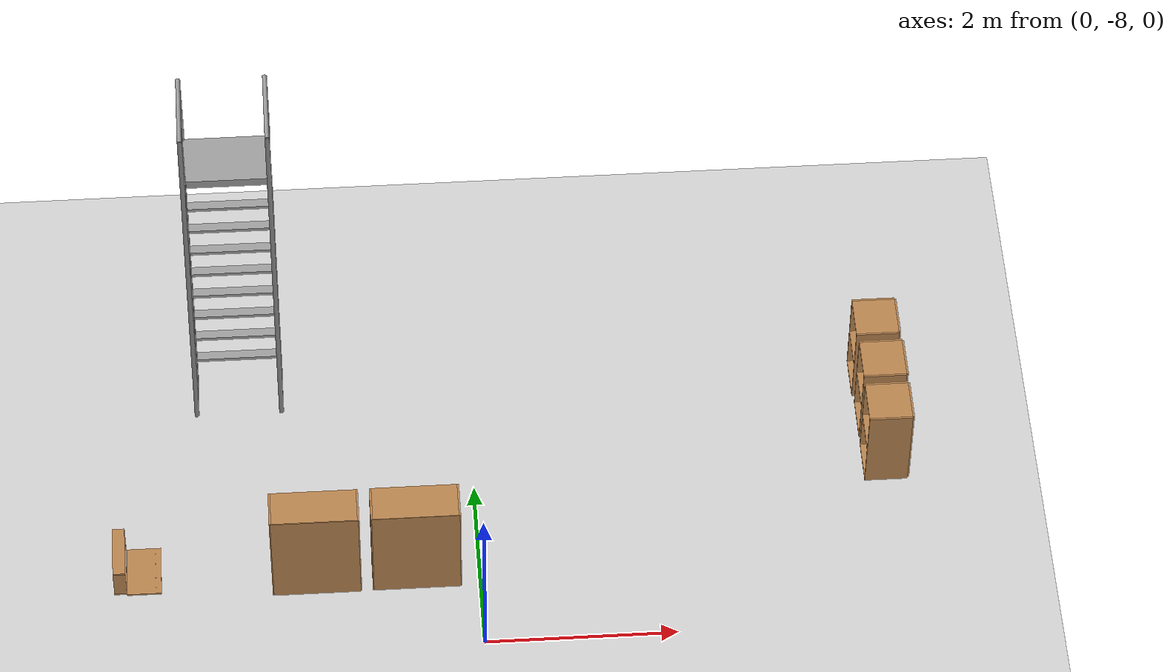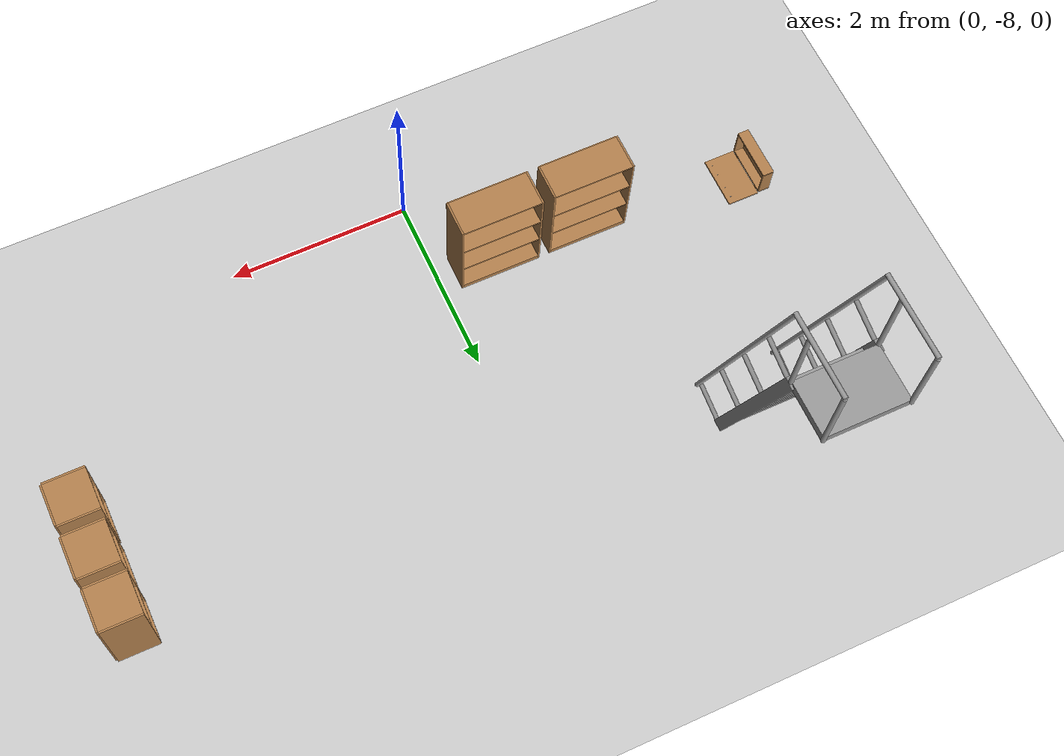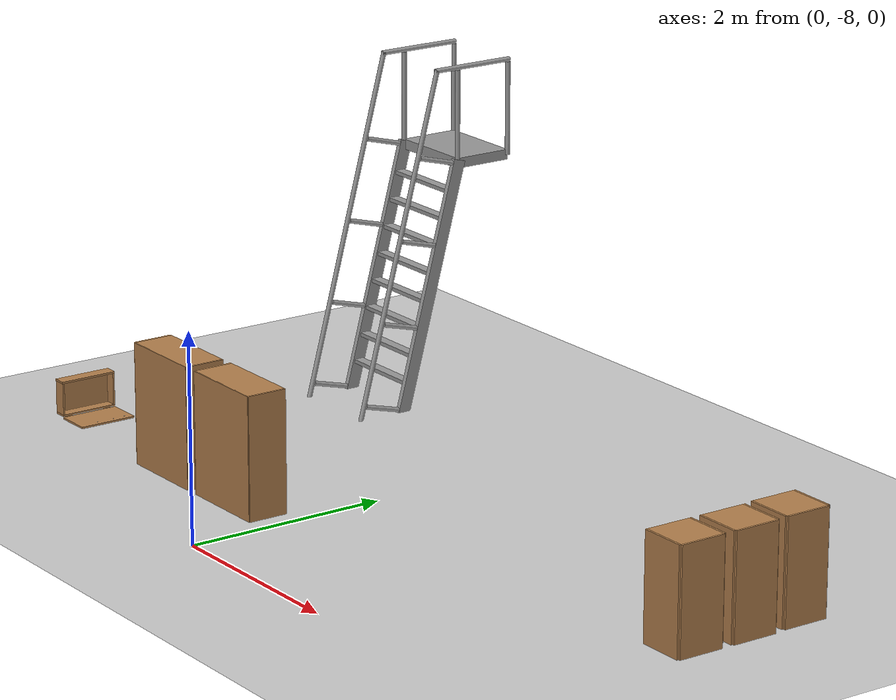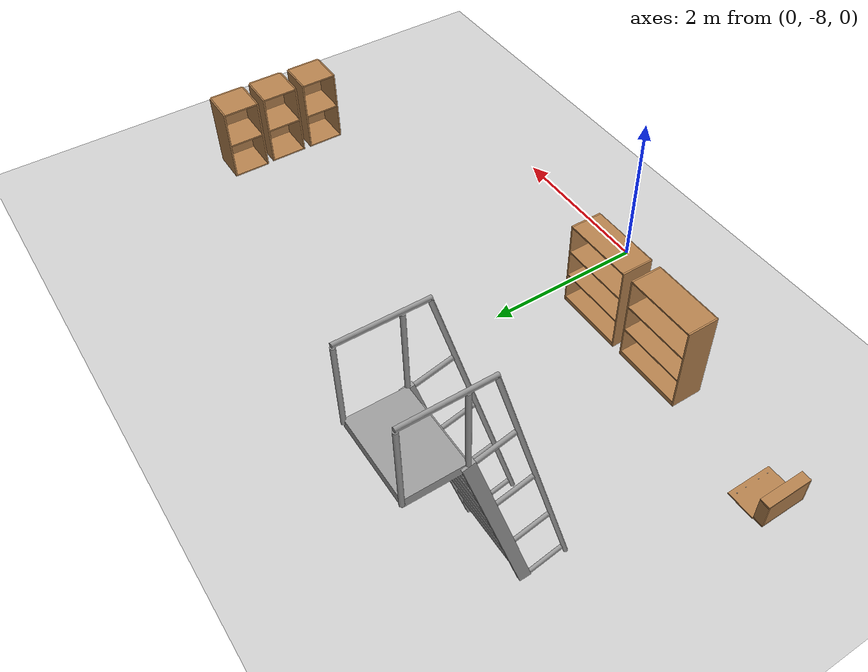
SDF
<sdf version="1.6">
 <world name="default">
  <model name="ground_plane">
   <static>1</static>
   <link name="link">
    <collision name="collision">
     <geometry><plane><normal>0 0 1</normal><size>100 100</size></plane></geometry>
     <surface><friction><ode><mu>100</mu><mu2>50</mu2></ode></friction></surface>
    </collision>
    <visual name="visual">
     <cast_shadows>0</cast_shadows>
     <geometry><plane><normal>0 0 1</normal><size>100 100</size></plane></geometry>
     <material>
      <script><uri>file://media/materials/scripts/gazebo.material</uri><name>Gazebo/Grey</name></script>
     </material>
    </visual>
   </link>
  </model>
  <model name="wooden_case">
   <link name="base">
    <pose>0 0 0.024 0 -0 0</pose>
    <inertial>
     <pose>-0.022184 0 0.171592 0 -0 0</pose>
     <mass>3.96264</mass>
     <inertia>
      <ixx>0.213536</ixx>
      <ixy>0</ixy>
      <ixz>0.000779377</ixz>
      <iyy>0.0708943</iyy>
      <iyz>0</iyz>
      <izz>0.154604</izz>
     </inertia>
    </inertial>
    <collision name="collision_back">
     <pose>-0.053975 0 0.1778 0 -0 0</pose>
     <geometry><box><size>0.01905 0.5461 0.3175</size></box></geometry>
     <surface>
      <contact>
       <poissons_ratio>0.347</poissons_ratio>
       <elastic_modulus>8.8e+09</elastic_modulus>
       <ode><kp>100000</kp><kd>100</kd><max_vel>100</max_vel><min_depth>0.001</min_depth></ode>
      </contact>
      <friction>
       <torsional>
        <coefficient>1</coefficient>
        <use_patch_radius>0</use_patch_radius>
        <surface_radius>0.01</surface_radius>
       </torsional>
      </friction>
     </surface>
    </collision>
    <visual name="visual_back">
     <pose>-0.053975 0 0.1778 0 -0 0</pose>
     <geometry><box><size>0.01905 0.5461 0.3175</size></box></geometry>
     <material>
      <script><uri>file://media/materials/scripts/gazebo.material</uri><name>Gazebo/Wood</name></script>
     </material>
    </visual>
    <collision name="collision_bottom">
     <pose>0 0 0.009525 0 -0 0</pose>
     <geometry><box><size>0.127 0.5842 0.01905</size></box></geometry>
     <surface>
      <contact>
       <poissons_ratio>0.347</poissons_ratio>
       <elastic_modulus>8.8e+09</elastic_modulus>
       <ode><kp>100000</kp><kd>100</kd><max_vel>100</max_vel><min_depth>0.001</min_depth></ode>
      </contact>
      <friction>
       <torsional>
        <coefficient>1</coefficient>
        <use_patch_radius>0</use_patch_radius>
        <surface_radius>0.01</surface_radius>
       </torsional>
      </friction>
     </surface>
    </collision>
    <visual name="visual_bottom">
     <pose>0 0 0.009525 0 -0 0</pose>
     <geometry><box><size>0.127 0.5842 0.01905</size></box></geometry>
     <material>
      <script><uri>file://media/materials/scripts/gazebo.material</uri><name>Gazebo/Wood</name></script>
     </material>
    </visual>
    <collision name="collision_top">
     <pose>0 0 0.346075 0 -0 0</pose>
     <geometry><box><size>0.127 0.5842 0.01905</size></box></geometry>
     <surface>
      <contact>
       <poissons_ratio>0.347</poissons_ratio>
       <elastic_modulus>8.8e+09</elastic_modulus>
       <ode><kp>100000</kp><kd>100</kd><max_vel>100</max_vel><min_depth>0.001</min_depth></ode>
      </contact>
      <friction>
       <torsional>
        <coefficient>1</coefficient>
        <use_patch_radius>0</use_patch_radius>
        <surface_radius>0.01</surface_radius>
       </torsional>
      </friction>
     </surface>
    </collision>
    <visual name="visual_top">
     <pose>0 0 0.346075 0 -0 0</pose>
     <geometry><box><size>0.127 0.5842 0.01905</size></box></geometry>
     <material>
      <script><uri>file://media/materials/scripts/gazebo.material</uri><name>Gazebo/Wood</name></script>
     </material>
    </visual>
    <collision name="collision_left">
     <pose>0 -0.282575 0.1778 0 -0 0</pose>
     <geometry><box><size>0.127 0.01905 0.3175</size></box></geometry>
     <surface>
      <contact>
       <poissons_ratio>0.347</poissons_ratio>
       <elastic_modulus>8.8e+09</elastic_modulus>
       <ode><kp>100000</kp><kd>100</kd><max_vel>100</max_vel><min_depth>0.001</min_depth></ode>
      </contact>
      <friction>
       <torsional>
        <coefficient>1</coefficient>
        <use_patch_radius>0</use_patch_radius>
        <surface_radius>0.01</surface_radius>
       </torsional>
      </friction>
     </surface>
    </collision>
    <visual name="visual_left">
     <pose>0 -0.282575 0.1778 0 -0 0</pose>
     <geometry><box><size>0.127 0.01905 0.3175</size></box></geometry>
     <material>
      <script><uri>file://media/materials/scripts/gazebo.material</uri><name>Gazebo/Wood</name></script>
     </material>
    </visual>
    <collision name="collision_right">
     <pose>0 0.282575 0.1778 0 -0 0</pose>
     <geometry><box><size>0.127 0.01905 0.3175</size></box></geometry>
     <surface>
      <contact>
       <poissons_ratio>0.347</poissons_ratio>
       <elastic_modulus>8.8e+09</elastic_modulus>
       <ode><kp>100000</kp><kd>100</kd><max_vel>100</max_vel><min_depth>0.001</min_depth></ode>
      </contact>
      <friction>
       <torsional>
        <coefficient>1</coefficient>
        <use_patch_radius>0</use_patch_radius>
        <surface_radius>0.01</surface_radius>
       </torsional>
      </friction>
     </surface>
    </collision>
    <visual name="visual_right">
     <pose>0 0.282575 0.1778 0 -0 0</pose>
     <geometry><box><size>0.127 0.01905 0.3175</size></box></geometry>
     <material>
      <script><uri>file://media/materials/scripts/gazebo.material</uri><name>Gazebo/Wood</name></script>
     </material>
    </visual>
    <collision name="collision_block_left">
     <pose>0.0095 -0.2151 -0.012 0 -0 0</pose>
     <geometry><box><size>0.108 0.05 0.024</size></box></geometry>
     <surface>
      <contact>
       <poissons_ratio>0.347</poissons_ratio>
       <elastic_modulus>8.8e+09</elastic_modulus>
       <ode><kp>100000</kp><kd>100</kd><max_vel>100</max_vel><min_depth>0.001</min_depth></ode>
      </contact>
      <friction>
       <torsional>
        <coefficient>1</coefficient>
        <use_patch_radius>0</use_patch_radius>
        <surface_radius>0.01</surface_radius>
       </torsional>
      </friction>
     </surface>
    </collision>
    <visual name="visual_block_left">
     <pose>0.0095 -0.2151 -0.012 0 -0 0</pose>
     <geometry><box><size>0.108 0.05 0.024</size></box></geometry>
     <material>
      <script><uri>file://media/materials/scripts/gazebo.material</uri><name>Gazebo/Wood</name></script>
     </material>
    </visual>
    <collision name="collision_block_right">
     <pose>0.0095 0.2151 -0.012 0 -0 0</pose>
     <geometry><box><size>0.108 0.05 0.024</size></box></geometry>
     <surface>
      <contact>
       <poissons_ratio>0.347</poissons_ratio>
       <elastic_modulus>8.8e+09</elastic_modulus>
       <ode><kp>100000</kp><kd>100</kd><max_vel>100</max_vel><min_depth>0.001</min_depth></ode>
      </contact>
      <friction>
       <torsional>
        <coefficient>1</coefficient>
        <use_patch_radius>0</use_patch_radius>
        <surface_radius>0.01</surface_radius>
       </torsional>
      </friction>
     </surface>
    </collision>
    <visual name="visual_block_right">
     <pose>0.0095 0.2151 -0.012 0 -0 0</pose>
     <geometry><box><size>0.108 0.05 0.024</size></box></geometry>
     <material>
      <script><uri>file://media/materials/scripts/gazebo.material</uri><name>Gazebo/Wood</name></script>
     </material>
    </visual>
   </link>
   <link name="lid">
    <pose>0.243775 0 0.009525 0 -0 0</pose>
    <inertial>
     <mass>1.97874</mass>
     <inertia>
      <ixx>0.0563367</ixx>
      <ixy>0</ixy>
      <ixz>0</ixz>
      <iyy>0.020911</iyy>
      <iyz>0</iyz>
      <izz>0.0771281</izz>
     </inertia>
    </inertial>
    <collision name="collision">
     <geometry><box><size>0.3556 0.5842 0.01905</size></box></geometry>
     <surface>
      <contact>
       <poissons_ratio>0.347</poissons_ratio>
       <elastic_modulus>8.8e+09</elastic_modulus>
       <ode><kp>100000</kp><kd>100</kd><max_vel>100</max_vel><min_depth>0.001</min_depth></ode>
      </contact>
      <friction>
       <torsional>
        <coefficient>1</coefficient>
        <use_patch_radius>0</use_patch_radius>
        <surface_radius>0.01</surface_radius>
       </torsional>
      </friction>
     </surface>
    </collision>
    <visual name="visual">
     <geometry><box><size>0.3556 0.5842 0.01905</size></box></geometry>
     <material>
      <script><uri>file://media/materials/scripts/gazebo.material</uri><name>Gazebo/Wood</name></script>
     </material>
    </visual>
    <visual name="tee_nut_1">
     <pose>0.122 -0.216 0 0 -0 0</pose>
     <geometry><cylinder><radius>0.00635</radius><length>0.0192405</length></cylinder></geometry>
     <material>
      <script><uri>file://media/materials/scripts/gazebo.material</uri><name>Gazebo/Grey</name></script>
     </material>
    </visual>
    <visual name="tee_nut_2">
     <pose>0.122 -0.088 0 0 -0 0</pose>
     <geometry><cylinder><radius>0.00635</radius><length>0.0192405</length></cylinder></geometry>
     <material>
      <script><uri>file://media/materials/scripts/gazebo.material</uri><name>Gazebo/Grey</name></script>
     </material>
    </visual>
    <visual name="tee_nut_3">
     <pose>0.122 0.088 0 0 -0 0</pose>
     <geometry><cylinder><radius>0.00635</radius><length>0.0192405</length></cylinder></geometry>
     <material>
      <script><uri>file://media/materials/scripts/gazebo.material</uri><name>Gazebo/Grey</name></script>
     </material>
    </visual>
    <visual name="tee_nut_4">
     <pose>0.122 0.216 0 0 -0 0</pose>
     <geometry><cylinder><radius>0.00635</radius><length>0.0192405</length></cylinder></geometry>
     <material>
      <script><uri>file://media/materials/scripts/gazebo.material</uri><name>Gazebo/Grey</name></script>
     </material>
    </visual>
   </link>
   <joint name="lid_hinge" type="revolute">
    <pose>-0.1778 0 0.01905 0 -0 0</pose>
    <parent>base</parent>
    <child>lid</child>
    <axis>
     <xyz>0 1 0</xyz>
     <limit><upper>0.523599</upper><lower>-1.5708</lower></limit>
     <use_parent_model_frame>0</use_parent_model_frame>
     <dynamics><spring_reference>0</spring_reference><spring_stiffness>0</spring_stiffness></dynamics>
    </axis>
   </joint>
   <pose>-3.72743 -6.89017 -0.001057 -0 -0.000425 1e-06</pose>
  </model>
  <model name="ladder_75deg_2rails">
   <static>1</static>
   <link name="step0">
    <pose>0 0.071453 0.266667 0 -0 0</pose>
    <inertial>
     <mass>9.75482</mass>
     <inertia>
      <ixx>0.00957124</ixx>
      <iyy>0.65963</iyy>
      <izz>0.666842</izz>
      <ixy>0</ixy>
      <ixz>0</ixz>
      <iyz>0</iyz>
     </inertia>
    </inertial>
    <collision name="collision"><geometry><box><size>0.9 0.1016 0.0381</size></box></geometry></collision>
    <visual name="visual">
     <geometry><box><size>0.9 0.1016 0.0381</size></box></geometry>
     <material>
      <script><uri>file://media/materials/scripts/gazebo.material</uri><name>Gazebo/Grey</name></script>
     </material>
    </visual>
   </link>
   <link name="step1">
    <pose>0 0.142906 0.533333 0 -0 0</pose>
    <inertial>
     <mass>9.75482</mass>
     <inertia>
      <ixx>0.00957124</ixx>
      <iyy>0.65963</iyy>
      <izz>0.666842</izz>
      <ixy>0</ixy>
      <ixz>0</ixz>
      <iyz>0</iyz>
     </inertia>
    </inertial>
    <collision name="collision"><geometry><box><size>0.9 0.1016 0.0381</size></box></geometry></collision>
    <visual name="visual">
     <geometry><box><size>0.9 0.1016 0.0381</size></box></geometry>
     <material>
      <script><uri>file://media/materials/scripts/gazebo.material</uri><name>Gazebo/Grey</name></script>
     </material>
    </visual>
   </link>
   <link name="step2">
    <pose>0 0.214359 0.8 0 -0 0</pose>
    <inertial>
     <mass>9.75482</mass>
     <inertia>
      <ixx>0.00957124</ixx>
      <iyy>0.65963</iyy>
      <izz>0.666842</izz>
      <ixy>0</ixy>
      <ixz>0</ixz>
      <iyz>0</iyz>
     </inertia>
    </inertial>
    <collision name="collision"><geometry><box><size>0.9 0.1016 0.0381</size></box></geometry></collision>
    <visual name="visual">
     <geometry><box><size>0.9 0.1016 0.0381</size></box></geometry>
     <material>
      <script><uri>file://media/materials/scripts/gazebo.material</uri><name>Gazebo/Grey</name></script>
     </material>
    </visual>
   </link>
   <link name="step3">
    <pose>0 0.285812 1.06667 0 -0 0</pose>
    <inertial>
     <mass>9.75482</mass>
     <inertia>
      <ixx>0.00957124</ixx>
      <iyy>0.65963</iyy>
      <izz>0.666842</izz>
      <ixy>0</ixy>
      <ixz>0</ixz>
      <iyz>0</iyz>
     </inertia>
    </inertial>
    <collision name="collision"><geometry><box><size>0.9 0.1016 0.0381</size></box></geometry></collision>
    <visual name="visual">
     <geometry><box><size>0.9 0.1016 0.0381</size></box></geometry>
     <material>
      <script><uri>file://media/materials/scripts/gazebo.material</uri><name>Gazebo/Grey</name></script>
     </material>
    </visual>
   </link>
   <link name="step4">
    <pose>0 0.357266 1.33333 0 -0 0</pose>
    <inertial>
     <mass>9.75482</mass>
     <inertia>
      <ixx>0.00957124</ixx>
      <iyy>0.65963</iyy>
      <izz>0.666842</izz>
      <ixy>0</ixy>
      <ixz>0</ixz>
      <iyz>0</iyz>
     </inertia>
    </inertial>
    <collision name="collision"><geometry><box><size>0.9 0.1016 0.0381</size></box></geometry></collision>
    <visual name="visual">
     <geometry><box><size>0.9 0.1016 0.0381</size></box></geometry>
     <material>
      <script><uri>file://media/materials/scripts/gazebo.material</uri><name>Gazebo/Grey</name></script>
     </material>
    </visual>
   </link>
   <link name="step5">
    <pose>0 0.428719 1.6 0 -0 0</pose>
    <inertial>
     <mass>9.75482</mass>
     <inertia>
      <ixx>0.00957124</ixx>
      <iyy>0.65963</iyy>
      <izz>0.666842</izz>
      <ixy>0</ixy>
      <ixz>0</ixz>
      <iyz>0</iyz>
     </inertia>
    </inertial>
    <collision name="collision"><geometry><box><size>0.9 0.1016 0.0381</size></box></geometry></collision>
    <visual name="visual">
     <geometry><box><size>0.9 0.1016 0.0381</size></box></geometry>
     <material>
      <script><uri>file://media/materials/scripts/gazebo.material</uri><name>Gazebo/Grey</name></script>
     </material>
    </visual>
   </link>
   <link name="step6">
    <pose>0 0.500172 1.86667 0 -0 0</pose>
    <inertial>
     <mass>9.75482</mass>
     <inertia>
      <ixx>0.00957124</ixx>
      <iyy>0.65963</iyy>
      <izz>0.666842</izz>
      <ixy>0</ixy>
      <ixz>0</ixz>
      <iyz>0</iyz>
     </inertia>
    </inertial>
    <collision name="collision"><geometry><box><size>0.9 0.1016 0.0381</size></box></geometry></collision>
    <visual name="visual">
     <geometry><box><size>0.9 0.1016 0.0381</size></box></geometry>
     <material>
      <script><uri>file://media/materials/scripts/gazebo.material</uri><name>Gazebo/Grey</name></script>
     </material>
    </visual>
   </link>
   <link name="step7">
    <pose>0 0.571625 2.13333 0 -0 0</pose>
    <inertial>
     <mass>9.75482</mass>
     <inertia>
      <ixx>0.00957124</ixx>
      <iyy>0.65963</iyy>
      <izz>0.666842</izz>
      <ixy>0</ixy>
      <ixz>0</ixz>
      <iyz>0</iyz>
     </inertia>
    </inertial>
    <collision name="collision"><geometry><box><size>0.9 0.1016 0.0381</size></box></geometry></collision>
    <visual name="visual">
     <geometry><box><size>0.9 0.1016 0.0381</size></box></geometry>
     <material>
      <script><uri>file://media/materials/scripts/gazebo.material</uri><name>Gazebo/Grey</name></script>
     </material>
    </visual>
   </link>
   <link name="landing">
    <pose>0 0.943078 2.4 0 -0 0</pose>
    <inertial>
     <mass>57.6072</mass>
     <inertia><ixx>1.73518</ixx><iyy>3.89545</iyy><izz>5.6167</izz><ixy>0</ixy><ixz>0</ixz><iyz>0</iyz></inertia>
    </inertial>
    <collision name="collision"><geometry><box><size>0.9 0.6 0.1016</size></box></geometry></collision>
    <visual name="visual">
     <geometry><box><size>0.9 0.6 0.1016</size></box></geometry>
     <material>
      <script><uri>file://media/materials/scripts/gazebo.material</uri><name>Gazebo/Grey</name></script>
     </material>
    </visual>
   </link>
   <link name="left_side_wall">
    <pose>-0.45 0.321539 1.2 1.309 -0 0</pose>
    <collision name="collision"><geometry><box><size>0.0508 2.56466 0.13</size></box></geometry></collision>
    <visual name="visual">
     <geometry><box><size>0.0508 2.56466 0.13</size></box></geometry>
     <material>
      <script><uri>file://media/materials/scripts/gazebo.material</uri><name>Gazebo/Grey</name></script>
     </material>
    </visual>
   </link>
   <link name="right_side_wall">
    <pose>0.45 0.321539 1.2 1.309 -0 0</pose>
    <collision name="collision"><geometry><box><size>0.0508 2.56466 0.13</size></box></geometry></collision>
    <visual name="visual">
     <geometry><box><size>0.0508 2.56466 0.13</size></box></geometry>
     <material>
      <script><uri>file://media/materials/scripts/gazebo.material</uri><name>Gazebo/Grey</name></script>
     </material>
    </visual>
   </link>
   <link name="left_railing_long">
    <pose>-0.45 -0.053461 1.66651 -0.261799 0 0</pose>
    <collision name="collision">
     <geometry><cylinder><radius>0.02413</radius><length>3.51529</length></cylinder></geometry>
    </collision>
    <visual name="visual">
     <geometry><cylinder><radius>0.02413</radius><length>3.51529</length></cylinder></geometry>
     <material>
      <script><uri>file://media/materials/scripts/gazebo.material</uri><name>Gazebo/Grey</name></script>
     </material>
    </visual>
   </link>
   <link name="left_railing_upright0">
    <pose>-0.45 -0.210089 0.056293 1.309 -0 0</pose>
    <collision name="collision">
     <geometry><cylinder><radius>0.02413</radius><length>0.482963</length></cylinder></geometry>
    </collision>
    <visual name="visual">
     <geometry><cylinder><radius>0.02413</radius><length>0.482963</length></cylinder></geometry>
     <material>
      <script><uri>file://media/materials/scripts/gazebo.material</uri><name>Gazebo/Grey</name></script>
     </material>
    </visual>
   </link>
   <link name="left_railing_upright1">
    <pose>-0.45 0.00427 0.856293 1.309 -0 0</pose>
    <collision name="collision">
     <geometry><cylinder><radius>0.02413</radius><length>0.482963</length></cylinder></geometry>
    </collision>
    <visual name="visual">
     <geometry><cylinder><radius>0.02413</radius><length>0.482963</length></cylinder></geometry>
     <material>
      <script><uri>file://media/materials/scripts/gazebo.material</uri><name>Gazebo/Grey</name></script>
     </material>
    </visual>
   </link>
   <link name="left_railing_upright2">
    <pose>-0.45 0.21863 1.65629 1.309 -0 0</pose>
    <collision name="collision">
     <geometry><cylinder><radius>0.02413</radius><length>0.482963</length></cylinder></geometry>
    </collision>
    <visual name="visual">
     <geometry><cylinder><radius>0.02413</radius><length>0.482963</length></cylinder></geometry>
     <material>
      <script><uri>file://media/materials/scripts/gazebo.material</uri><name>Gazebo/Grey</name></script>
     </material>
    </visual>
   </link>
   <link name="left_railing_upright3">
    <pose>-0.45 0.432989 2.45629 1.309 -0 0</pose>
    <collision name="collision">
     <geometry><cylinder><radius>0.02413</radius><length>0.482963</length></cylinder></geometry>
    </collision>
    <visual name="visual">
     <geometry><cylinder><radius>0.02413</radius><length>0.482963</length></cylinder></geometry>
     <material>
      <script><uri>file://media/materials/scripts/gazebo.material</uri><name>Gazebo/Grey</name></script>
     </material>
    </visual>
   </link>
   <link name="left_railing_landing_top">
    <pose>-0.45 0.818078 3.35714 1.5708 -0 0</pose>
    <collision name="collision">
     <geometry><cylinder><radius>0.02413</radius><length>0.87413</length></cylinder></geometry>
    </collision>
    <visual name="visual">
     <geometry><cylinder><radius>0.02413</radius><length>0.87413</length></cylinder></geometry>
     <material>
      <script><uri>file://media/materials/scripts/gazebo.material</uri><name>Gazebo/Grey</name></script>
     </material>
    </visual>
   </link>
   <link name="left_railing_landing_upright_0">
    <pose>-0.45 0.643078 2.86651 0 -0 0</pose>
    <collision name="collision">
     <geometry><cylinder><radius>0.02413</radius><length>0.933013</length></cylinder></geometry>
    </collision>
    <visual name="visual">
     <geometry><cylinder><radius>0.02413</radius><length>0.933013</length></cylinder></geometry>
     <material>
      <script><uri>file://media/materials/scripts/gazebo.material</uri><name>Gazebo/Grey</name></script>
     </material>
    </visual>
   </link>
   <link name="left_railing_landing_upright_1">
    <pose>-0.45 1.24308 2.86651 0 -0 0</pose>
    <collision name="collision">
     <geometry><cylinder><radius>0.02413</radius><length>0.933013</length></cylinder></geometry>
    </collision>
    <visual name="visual">
     <geometry><cylinder><radius>0.02413</radius><length>0.933013</length></cylinder></geometry>
     <material>
      <script><uri>file://media/materials/scripts/gazebo.material</uri><name>Gazebo/Grey</name></script>
     </material>
    </visual>
   </link>
   <link name="right_railing_long">
    <pose>0.45 -0.053461 1.66651 -0.261799 0 0</pose>
    <collision name="collision">
     <geometry><cylinder><radius>0.02413</radius><length>3.51529</length></cylinder></geometry>
    </collision>
    <visual name="visual">
     <geometry><cylinder><radius>0.02413</radius><length>3.51529</length></cylinder></geometry>
     <material>
      <script><uri>file://media/materials/scripts/gazebo.material</uri><name>Gazebo/Grey</name></script>
     </material>
    </visual>
   </link>
   <link name="right_railing_upright0">
    <pose>0.45 -0.210089 0.056293 1.309 -0 0</pose>
    <collision name="collision">
     <geometry><cylinder><radius>0.02413</radius><length>0.482963</length></cylinder></geometry>
    </collision>
    <visual name="visual">
     <geometry><cylinder><radius>0.02413</radius><length>0.482963</length></cylinder></geometry>
     <material>
      <script><uri>file://media/materials/scripts/gazebo.material</uri><name>Gazebo/Grey</name></script>
     </material>
    </visual>
   </link>
   <link name="right_railing_upright1">
    <pose>0.45 0.00427 0.856293 1.309 -0 0</pose>
    <collision name="collision">
     <geometry><cylinder><radius>0.02413</radius><length>0.482963</length></cylinder></geometry>
    </collision>
    <visual name="visual">
     <geometry><cylinder><radius>0.02413</radius><length>0.482963</length></cylinder></geometry>
     <material>
      <script><uri>file://media/materials/scripts/gazebo.material</uri><name>Gazebo/Grey</name></script>
     </material>
    </visual>
   </link>
   <link name="right_railing_upright2">
    <pose>0.45 0.21863 1.65629 1.309 -0 0</pose>
    <collision name="collision">
     <geometry><cylinder><radius>0.02413</radius><length>0.482963</length></cylinder></geometry>
    </collision>
    <visual name="visual">
     <geometry><cylinder><radius>0.02413</radius><length>0.482963</length></cylinder></geometry>
     <material>
      <script><uri>file://media/materials/scripts/gazebo.material</uri><name>Gazebo/Grey</name></script>
     </material>
    </visual>
   </link>
   <link name="right_railing_upright3">
    <pose>0.45 0.432989 2.45629 1.309 -0 0</pose>
    <collision name="collision">
     <geometry><cylinder><radius>0.02413</radius><length>0.482963</length></cylinder></geometry>
    </collision>
    <visual name="visual">
     <geometry><cylinder><radius>0.02413</radius><length>0.482963</length></cylinder></geometry>
     <material>
      <script><uri>file://media/materials/scripts/gazebo.material</uri><name>Gazebo/Grey</name></script>
     </material>
    </visual>
   </link>
   <link name="right_railing_landing_top">
    <pose>0.45 0.818078 3.35714 1.5708 -0 0</pose>
    <collision name="collision">
     <geometry><cylinder><radius>0.02413</radius><length>0.87413</length></cylinder></geometry>
    </collision>
    <visual name="visual">
     <geometry><cylinder><radius>0.02413</radius><length>0.87413</length></cylinder></geometry>
     <material>
      <script><uri>file://media/materials/scripts/gazebo.material</uri><name>Gazebo/Grey</name></script>
     </material>
    </visual>
   </link>
   <link name="right_railing_landing_upright_0">
    <pose>0.45 0.643078 2.86651 0 -0 0</pose>
    <collision name="collision">
     <geometry><cylinder><radius>0.02413</radius><length>0.933013</length></cylinder></geometry>
    </collision>
    <visual name="visual">
     <geometry><cylinder><radius>0.02413</radius><length>0.933013</length></cylinder></geometry>
     <material>
      <script><uri>file://media/materials/scripts/gazebo.material</uri><name>Gazebo/Grey</name></script>
     </material>
    </visual>
   </link>
   <link name="right_railing_landing_upright_1">
    <pose>0.45 1.24308 2.86651 0 -0 0</pose>
    <collision name="collision">
     <geometry><cylinder><radius>0.02413</radius><length>0.933013</length></cylinder></geometry>
    </collision>
    <visual name="visual">
     <geometry><cylinder><radius>0.02413</radius><length>0.933013</length></cylinder></geometry>
     <material>
      <script><uri>file://media/materials/scripts/gazebo.material</uri><name>Gazebo/Grey</name></script>
     </material>
    </visual>
   </link>
   <pose>-2.43846 -4.32144 0 0 -0 0</pose>
  </model>
  <model name="cabinet">
   <static>1</static>
   <link name="cabinet_bottom_plate">
    <inertial>
     <pose>0 0 -1 0 -0 0</pose>
     <inertia><ixx>2.05</ixx><ixy>0</ixy><ixz>0</ixz><iyy>2.05</iyy><iyz>0</iyz><izz>2.05</izz></inertia>
     <mass>25</mass>
    </inertial>
    <collision name="cabinet_bottom_plate_geom">
     <pose>0 0 0.01 0 -0 0</pose>
     <geometry><box><size>0.45 0.45 0.02</size></box></geometry>
    </collision>
    <visual name="cabinet_bottom_plate_geom_visual">
     <pose>0 0 0.01 0 -0 0</pose>
     <geometry><box><size>0.45 0.45 0.02</size></box></geometry>
     <material>
      <script><uri>file://media/materials/scripts/gazebo.material</uri><name>Gazebo/Wood</name></script>
     </material>
    </visual>
    <collision name="cabinet_bottom_plate_geom_cabinet_back_plate">
     <pose>0.235 0 0.51 0 -0 0</pose>
     <geometry><box><size>0.02 0.45 1.02</size></box></geometry>
    </collision>
    <visual name="cabinet_bottom_plate_geom_cabinet_back_plate_visual">
     <pose>0.235 0 0.51 0 -0 0</pose>
     <geometry><box><size>0.02 0.45 1.02</size></box></geometry>
     <material>
      <script><uri>file://media/materials/scripts/gazebo.material</uri><name>Gazebo/Wood</name></script>
     </material>
    </visual>
    <collision name="cabinet_bottom_plate_geom_cabinet_left_plate">
     <pose>0 0.235 0.51 0 -0 0</pose>
     <geometry><box><size>0.45 0.02 1.02</size></box></geometry>
    </collision>
    <visual name="cabinet_bottom_plate_geom_cabinet_left_plate_visual">
     <pose>0 0.235 0.51 0 -0 0</pose>
     <geometry><box><size>0.45 0.02 1.02</size></box></geometry>
     <material>
      <script><uri>file://media/materials/scripts/gazebo.material</uri><name>Gazebo/Wood</name></script>
     </material>
    </visual>
    <collision name="cabinet_bottom_plate_geom_cabinet_middle_plate">
     <pose>0 0 0.51 0 -0 0</pose>
     <geometry><box><size>0.45 0.45 0.02</size></box></geometry>
    </collision>
    <visual name="cabinet_bottom_plate_geom_cabinet_middle_plate_visual">
     <pose>0 0 0.51 0 -0 0</pose>
     <geometry><box><size>0.45 0.45 0.02</size></box></geometry>
     <material>
      <script><uri>file://media/materials/scripts/gazebo.material</uri><name>Gazebo/Wood</name></script>
     </material>
    </visual>
    <collision name="cabinet_bottom_plate_geom_cabinet_right_plate">
     <pose>0 -0.235 0.51 0 -0 0</pose>
     <geometry><box><size>0.45 0.02 1.02</size></box></geometry>
    </collision>
    <visual name="cabinet_bottom_plate_geom_cabinet_right_plate_visual">
     <pose>0 -0.235 0.51 0 -0 0</pose>
     <geometry><box><size>0.45 0.02 1.02</size></box></geometry>
     <material>
      <script><uri>file://media/materials/scripts/gazebo.material</uri><name>Gazebo/Wood</name></script>
     </material>
    </visual>
    <collision name="cabinet_bottom_plate_geom_cabinet_top_plate">
     <pose>0 0 1.01 0 -0 0</pose>
     <geometry><box><size>0.45 0.45 0.02</size></box></geometry>
    </collision>
    <visual name="cabinet_bottom_plate_geom_cabinet_top_plate_visual">
     <pose>0 0 1.01 0 -0 0</pose>
     <geometry><box><size>0.45 0.45 0.02</size></box></geometry>
     <material>
      <script><uri>file://media/materials/scripts/gazebo.material</uri><name>Gazebo/Wood</name></script>
     </material>
    </visual>
   </link>
   <pose>4.34455 -5.9004 0 0 -0 0</pose>
  </model>
  <model name="cabinet_clone">
   <static>1</static>
   <link name="cabinet_bottom_plate">
    <inertial>
     <pose>0 0 -1 0 -0 0</pose>
     <inertia><ixx>2.05</ixx><ixy>0</ixy><ixz>0</ixz><iyy>2.05</iyy><iyz>0</iyz><izz>2.05</izz></inertia>
     <mass>25</mass>
    </inertial>
    <collision name="cabinet_bottom_plate_geom">
     <pose>0 0 0.01 0 -0 0</pose>
     <geometry><box><size>0.45 0.45 0.02</size></box></geometry>
    </collision>
    <visual name="cabinet_bottom_plate_geom_visual">
     <pose>0 0 0.01 0 -0 0</pose>
     <geometry><box><size>0.45 0.45 0.02</size></box></geometry>
     <material>
      <script><uri>file://media/materials/scripts/gazebo.material</uri><name>Gazebo/Wood</name></script>
     </material>
    </visual>
    <collision name="cabinet_bottom_plate_geom_cabinet_back_plate">
     <pose>0.235 0 0.51 0 -0 0</pose>
     <geometry><box><size>0.02 0.45 1.02</size></box></geometry>
    </collision>
    <visual name="cabinet_bottom_plate_geom_cabinet_back_plate_visual">
     <pose>0.235 0 0.51 0 -0 0</pose>
     <geometry><box><size>0.02 0.45 1.02</size></box></geometry>
     <material>
      <script><uri>file://media/materials/scripts/gazebo.material</uri><name>Gazebo/Wood</name></script>
     </material>
    </visual>
    <collision name="cabinet_bottom_plate_geom_cabinet_left_plate">
     <pose>0 0.235 0.51 0 -0 0</pose>
     <geometry><box><size>0.45 0.02 1.02</size></box></geometry>
    </collision>
    <visual name="cabinet_bottom_plate_geom_cabinet_left_plate_visual">
     <pose>0 0.235 0.51 0 -0 0</pose>
     <geometry><box><size>0.45 0.02 1.02</size></box></geometry>
     <material>
      <script><uri>file://media/materials/scripts/gazebo.material</uri><name>Gazebo/Wood</name></script>
     </material>
    </visual>
    <collision name="cabinet_bottom_plate_geom_cabinet_middle_plate">
     <pose>0 0 0.51 0 -0 0</pose>
     <geometry><box><size>0.45 0.45 0.02</size></box></geometry>
    </collision>
    <visual name="cabinet_bottom_plate_geom_cabinet_middle_plate_visual">
     <pose>0 0 0.51 0 -0 0</pose>
     <geometry><box><size>0.45 0.45 0.02</size></box></geometry>
     <material>
      <script><uri>file://media/materials/scripts/gazebo.material</uri><name>Gazebo/Wood</name></script>
     </material>
    </visual>
    <collision name="cabinet_bottom_plate_geom_cabinet_right_plate">
     <pose>0 -0.235 0.51 0 -0 0</pose>
     <geometry><box><size>0.45 0.02 1.02</size></box></geometry>
    </collision>
    <visual name="cabinet_bottom_plate_geom_cabinet_right_plate_visual">
     <pose>0 -0.235 0.51 0 -0 0</pose>
     <geometry><box><size>0.45 0.02 1.02</size></box></geometry>
     <material>
      <script><uri>file://media/materials/scripts/gazebo.material</uri><name>Gazebo/Wood</name></script>
     </material>
    </visual>
    <collision name="cabinet_bottom_plate_geom_cabinet_top_plate">
     <pose>0 0 1.01 0 -0 0</pose>
     <geometry><box><size>0.45 0.45 0.02</size></box></geometry>
    </collision>
    <visual name="cabinet_bottom_plate_geom_cabinet_top_plate_visual">
     <pose>0 0 1.01 0 -0 0</pose>
     <geometry><box><size>0.45 0.45 0.02</size></box></geometry>
     <material>
      <script><uri>file://media/materials/scripts/gazebo.material</uri><name>Gazebo/Wood</name></script>
     </material>
    </visual>
   </link>
   <pose>4.34487 -5.3232 0 0 -0 0</pose>
  </model>
  <model name="cabinet_clone_0">
   <static>1</static>
   <link name="cabinet_bottom_plate">
    <inertial>
     <pose>0 0 -1 0 -0 0</pose>
     <inertia><ixx>2.05</ixx><ixy>0</ixy><ixz>0</ixz><iyy>2.05</iyy><iyz>0</iyz><izz>2.05</izz></inertia>
     <mass>25</mass>
    </inertial>
    <collision name="cabinet_bottom_plate_geom">
     <pose>0 0 0.01 0 -0 0</pose>
     <geometry><box><size>0.45 0.45 0.02</size></box></geometry>
    </collision>
    <visual name="cabinet_bottom_plate_geom_visual">
     <pose>0 0 0.01 0 -0 0</pose>
     <geometry><box><size>0.45 0.45 0.02</size></box></geometry>
     <material>
      <script><uri>file://media/materials/scripts/gazebo.material</uri><name>Gazebo/Wood</name></script>
     </material>
    </visual>
    <collision name="cabinet_bottom_plate_geom_cabinet_back_plate">
     <pose>0.235 0 0.51 0 -0 0</pose>
     <geometry><box><size>0.02 0.45 1.02</size></box></geometry>
    </collision>
    <visual name="cabinet_bottom_plate_geom_cabinet_back_plate_visual">
     <pose>0.235 0 0.51 0 -0 0</pose>
     <geometry><box><size>0.02 0.45 1.02</size></box></geometry>
     <material>
      <script><uri>file://media/materials/scripts/gazebo.material</uri><name>Gazebo/Wood</name></script>
     </material>
    </visual>
    <collision name="cabinet_bottom_plate_geom_cabinet_left_plate">
     <pose>0 0.235 0.51 0 -0 0</pose>
     <geometry><box><size>0.45 0.02 1.02</size></box></geometry>
    </collision>
    <visual name="cabinet_bottom_plate_geom_cabinet_left_plate_visual">
     <pose>0 0.235 0.51 0 -0 0</pose>
     <geometry><box><size>0.45 0.02 1.02</size></box></geometry>
     <material>
      <script><uri>file://media/materials/scripts/gazebo.material</uri><name>Gazebo/Wood</name></script>
     </material>
    </visual>
    <collision name="cabinet_bottom_plate_geom_cabinet_middle_plate">
     <pose>0 0 0.51 0 -0 0</pose>
     <geometry><box><size>0.45 0.45 0.02</size></box></geometry>
    </collision>
    <visual name="cabinet_bottom_plate_geom_cabinet_middle_plate_visual">
     <pose>0 0 0.51 0 -0 0</pose>
     <geometry><box><size>0.45 0.45 0.02</size></box></geometry>
     <material>
      <script><uri>file://media/materials/scripts/gazebo.material</uri><name>Gazebo/Wood</name></script>
     </material>
    </visual>
    <collision name="cabinet_bottom_plate_geom_cabinet_right_plate">
     <pose>0 -0.235 0.51 0 -0 0</pose>
     <geometry><box><size>0.45 0.02 1.02</size></box></geometry>
    </collision>
    <visual name="cabinet_bottom_plate_geom_cabinet_right_plate_visual">
     <pose>0 -0.235 0.51 0 -0 0</pose>
     <geometry><box><size>0.45 0.02 1.02</size></box></geometry>
     <material>
      <script><uri>file://media/materials/scripts/gazebo.material</uri><name>Gazebo/Wood</name></script>
     </material>
    </visual>
    <collision name="cabinet_bottom_plate_geom_cabinet_top_plate">
     <pose>0 0 1.01 0 -0 0</pose>
     <geometry><box><size>0.45 0.45 0.02</size></box></geometry>
    </collision>
    <visual name="cabinet_bottom_plate_geom_cabinet_top_plate_visual">
     <pose>0 0 1.01 0 -0 0</pose>
     <geometry><box><size>0.45 0.45 0.02</size></box></geometry>
     <material>
      <script><uri>file://media/materials/scripts/gazebo.material</uri><name>Gazebo/Wood</name></script>
     </material>
    </visual>
   </link>
   <pose>4.32656 -4.75391 0 0 -0 0</pose>
  </model>
  <model name="bookshelf_0">
   <static>1</static>
   <link name="link">
    <inertial><mass>1</mass></inertial>
    <collision name="back">
     <pose>0 0.005 0.6 0 -0 0</pose>
     <geometry><box><size>0.9 0.01 1.2</size></box></geometry>
    </collision>
    <visual name="visual1">
     <pose>0 0.005 0.6 0 -0 0</pose>
     <geometry><box><size>0.9 0.01 1.2</size></box></geometry>
     <material>
      <script><uri>file://media/materials/scripts/gazebo.material</uri><name>Gazebo/Wood</name></script>
     </material>
    </visual>
    <collision name="left_side">
     <pose>0.45 -0.195 0.6 0 -0 0</pose>
     <geometry><box><size>0.02 0.4 1.2</size></box></geometry>
    </collision>
    <visual name="visual2">
     <pose>0.45 -0.195 0.6 0 -0 0</pose>
     <geometry><box><size>0.02 0.4 1.2</size></box></geometry>
     <material>
      <script><uri>file://media/materials/scripts/gazebo.material</uri><name>Gazebo/Wood</name></script>
     </material>
    </visual>
    <collision name="right_side">
     <pose>-0.45 -0.195 0.6 0 -0 0</pose>
     <geometry><box><size>0.02 0.4 1.2</size></box></geometry>
    </collision>
    <visual name="visual3">
     <pose>-0.45 -0.195 0.6 0 -0 0</pose>
     <geometry><box><size>0.02 0.4 1.2</size></box></geometry>
     <material>
      <script><uri>file://media/materials/scripts/gazebo.material</uri><name>Gazebo/Wood</name></script>
     </material>
    </visual>
    <collision name="bottom">
     <pose>0 -0.195 0.03 0 -0 0</pose>
     <geometry><box><size>0.88 0.4 0.06</size></box></geometry>
    </collision>
    <visual name="visual4">
     <pose>0 -0.195 0.03 0 -0 0</pose>
     <geometry><box><size>0.88 0.4 0.06</size></box></geometry>
     <material>
      <script><uri>file://media/materials/scripts/gazebo.material</uri><name>Gazebo/Wood</name></script>
     </material>
    </visual>
    <collision name="top">
     <pose>0 -0.195 1.19 0 -0 0</pose>
     <geometry><box><size>0.88 0.4 0.02</size></box></geometry>
    </collision>
    <visual name="visual5">
     <pose>0 -0.195 1.19 0 -0 0</pose>
     <geometry><box><size>0.88 0.4 0.02</size></box></geometry>
     <material>
      <script><uri>file://media/materials/scripts/gazebo.material</uri><name>Gazebo/Wood</name></script>
     </material>
    </visual>
    <collision name="low_shelf">
     <pose>0 -0.195 0.43 0 -0 0</pose>
     <geometry><box><size>0.88 0.4 0.02</size></box></geometry>
    </collision>
    <visual name="visual6">
     <pose>0 -0.195 0.43 0 -0 0</pose>
     <geometry><box><size>0.88 0.4 0.02</size></box></geometry>
     <material>
      <script><uri>file://media/materials/scripts/gazebo.material</uri><name>Gazebo/Wood</name></script>
     </material>
    </visual>
    <collision name="high_shelf">
     <pose>0 -0.195 0.8 0 -0 0</pose>
     <geometry><box><size>0.88 0.4 0.02</size></box></geometry>
    </collision>
    <visual name="visual7">
     <pose>0 -0.195 0.8 0 -0 0</pose>
     <geometry><box><size>0.88 0.4 0.02</size></box></geometry>
     <material>
      <script><uri>file://media/materials/scripts/gazebo.material</uri><name>Gazebo/Wood</name></script>
     </material>
    </visual>
   </link>
   <pose>-0.657126 -7.25842 0 0 -0 3.14159</pose>
  </model>
  <model name="bookshelf_0_clone">
   <static>1</static>
   <link name="link">
    <inertial><mass>1</mass></inertial>
    <collision name="back">
     <pose>0 0.005 0.6 0 -0 0</pose>
     <geometry><box><size>0.9 0.01 1.2</size></box></geometry>
    </collision>
    <visual name="visual1">
     <pose>0 0.005 0.6 0 -0 0</pose>
     <geometry><box><size>0.9 0.01 1.2</size></box></geometry>
     <material>
      <script><uri>file://media/materials/scripts/gazebo.material</uri><name>Gazebo/Wood</name></script>
     </material>
    </visual>
    <collision name="left_side">
     <pose>0.45 -0.195 0.6 0 -0 0</pose>
     <geometry><box><size>0.02 0.4 1.2</size></box></geometry>
    </collision>
    <visual name="visual2">
     <pose>0.45 -0.195 0.6 0 -0 0</pose>
     <geometry><box><size>0.02 0.4 1.2</size></box></geometry>
     <material>
      <script><uri>file://media/materials/scripts/gazebo.material</uri><name>Gazebo/Wood</name></script>
     </material>
    </visual>
    <collision name="right_side">
     <pose>-0.45 -0.195 0.6 0 -0 0</pose>
     <geometry><box><size>0.02 0.4 1.2</size></box></geometry>
    </collision>
    <visual name="visual3">
     <pose>-0.45 -0.195 0.6 0 -0 0</pose>
     <geometry><box><size>0.02 0.4 1.2</size></box></geometry>
     <material>
      <script><uri>file://media/materials/scripts/gazebo.material</uri><name>Gazebo/Wood</name></script>
     </material>
    </visual>
    <collision name="bottom">
     <pose>0 -0.195 0.03 0 -0 0</pose>
     <geometry><box><size>0.88 0.4 0.06</size></box></geometry>
    </collision>
    <visual name="visual4">
     <pose>0 -0.195 0.03 0 -0 0</pose>
     <geometry><box><size>0.88 0.4 0.06</size></box></geometry>
     <material>
      <script><uri>file://media/materials/scripts/gazebo.material</uri><name>Gazebo/Wood</name></script>
     </material>
    </visual>
    <collision name="top">
     <pose>0 -0.195 1.19 0 -0 0</pose>
     <geometry><box><size>0.88 0.4 0.02</size></box></geometry>
    </collision>
    <visual name="visual5">
     <pose>0 -0.195 1.19 0 -0 0</pose>
     <geometry><box><size>0.88 0.4 0.02</size></box></geometry>
     <material>
      <script><uri>file://media/materials/scripts/gazebo.material</uri><name>Gazebo/Wood</name></script>
     </material>
    </visual>
    <collision name="low_shelf">
     <pose>0 -0.195 0.43 0 -0 0</pose>
     <geometry><box><size>0.88 0.4 0.02</size></box></geometry>
    </collision>
    <visual name="visual6">
     <pose>0 -0.195 0.43 0 -0 0</pose>
     <geometry><box><size>0.88 0.4 0.02</size></box></geometry>
     <material>
      <script><uri>file://media/materials/scripts/gazebo.material</uri><name>Gazebo/Wood</name></script>
     </material>
    </visual>
    <collision name="high_shelf">
     <pose>0 -0.195 0.8 0 -0 0</pose>
     <geometry><box><size>0.88 0.4 0.02</size></box></geometry>
    </collision>
    <visual name="visual7">
     <pose>0 -0.195 0.8 0 -0 0</pose>
     <geometry><box><size>0.88 0.4 0.02</size></box></geometry>
     <material>
      <script><uri>file://media/materials/scripts/gazebo.material</uri><name>Gazebo/Wood</name></script>
     </material>
    </visual>
   </link>
   <pose>-1.69386 -7.26338 0 0 -0 3.14159</pose>
  </model>
 </world>
</sdf>
